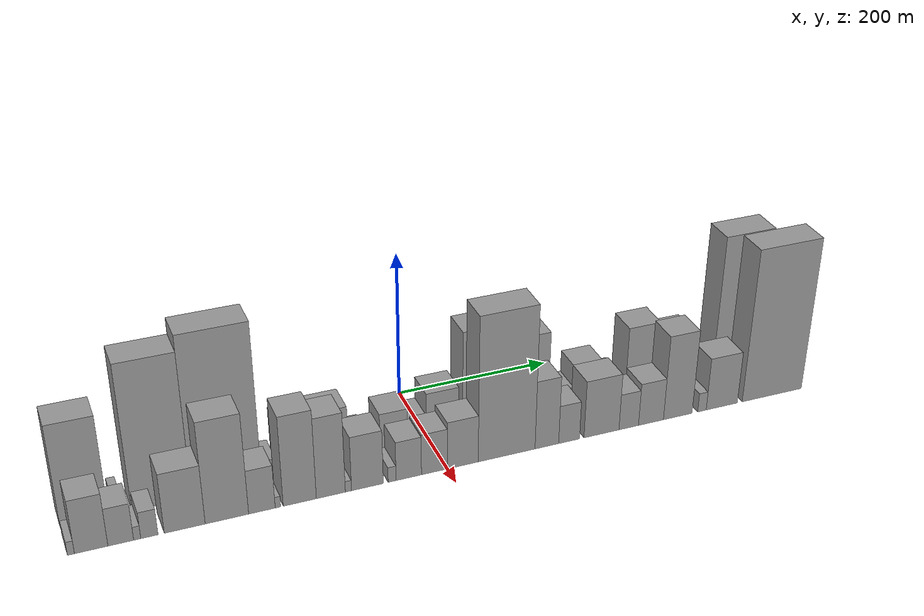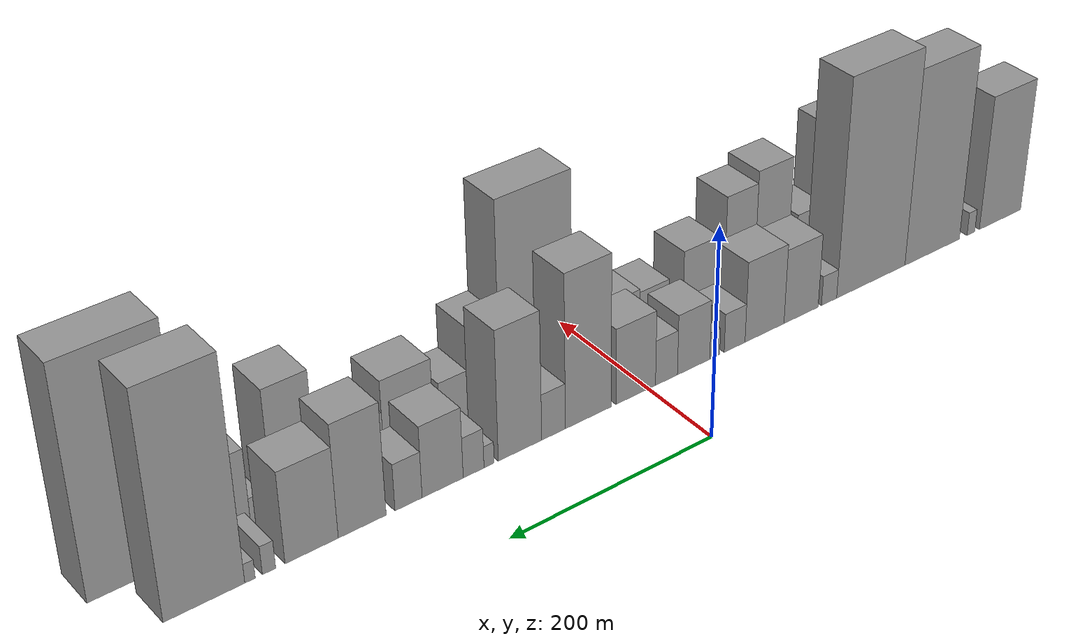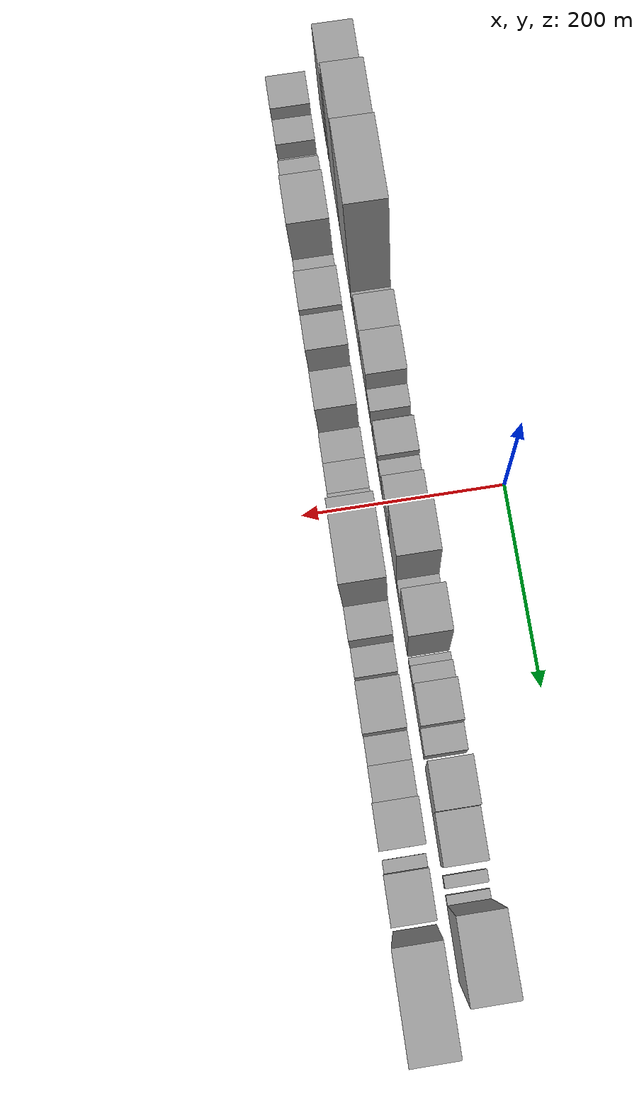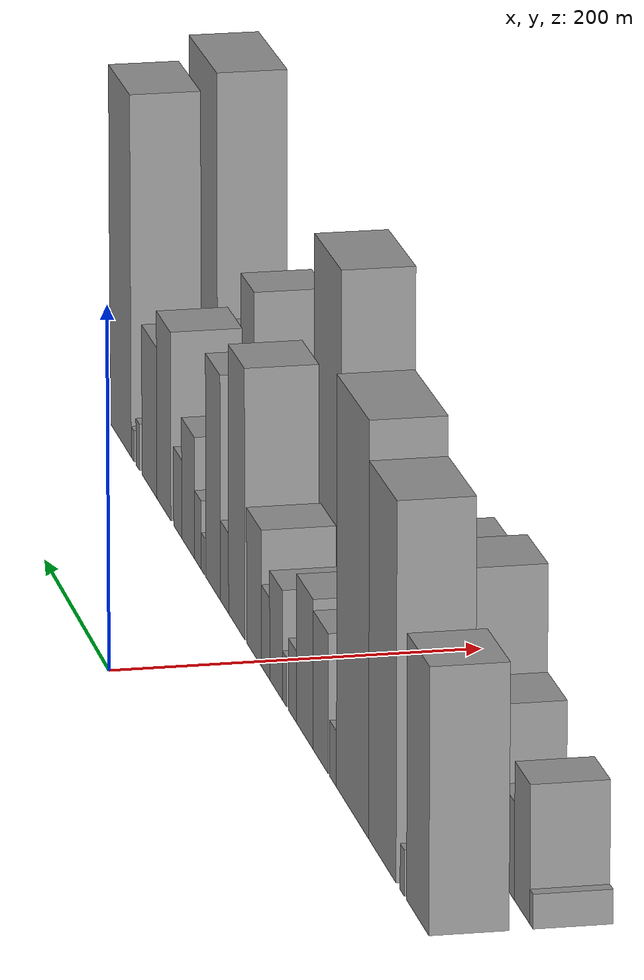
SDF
<sdf version="1.6">
 <world name="default">
  <scene>
   <sky><clouds><speed>12</speed></clouds></sky>
   <ambient>0.4 0.4 0.4 1</ambient>
   <background>0.7 0.7 0.7 1</background>
   <shadows>1</shadows>
  </scene>
  <gravity>0 0 -9.8066</gravity>
  <magnetic_field>6e-06 2.3e-05 -4.2e-05</magnetic_field>
  <physics default="0" name="default_physics" type="ode">
   <ode>
    <solver>
     <type>quick</type>
     <iters>10</iters>
     <sor>1.0</sor>
     <use_dynamic_moi_rescaling>0</use_dynamic_moi_rescaling>
    </solver>
    <constraints>
     <cfm>0</cfm>
     <erp>0.2</erp>
     <contact_max_correcting_vel>100</contact_max_correcting_vel>
     <contact_surface_layer>0.001</contact_surface_layer>
    </constraints>
   </ode>
   <max_step_size>0.004</max_step_size>
   <real_time_factor>1</real_time_factor>
   <real_time_update_rate>250</real_time_update_rate>
  </physics>
  <light name="sun" type="directional">
   <pose>0 0 10 0 0 0</pose>
   <diffuse>0.8 0.8 0.8 1</diffuse>
   <specular>0.2 0.2 0.2 1</specular>
   <attenuation>
    <range>1000</range>
    <constant>0.9</constant>
    <linear>0.01</linear>
    <quadratic>0.001</quadratic>
   </attenuation>
   <direction>-0.5 0.1 -0.9</direction>
  </light>
  <model name="building_1">
   <static>1</static>
   <pose>100.0000 -416.7734 0 0.000000 0.000000 0.000000</pose>
   <link name="link">
    <pose>0 0 69.00 0 0 0</pose>
    <collision name="collision"><geometry><box><size>40.0000 54.4531 138.0000</size></box></geometry></collision>
    <visual name="visual">
     <cast_shadows>0</cast_shadows>
     <geometry><box><size>40.0000 54.4531 138.0000</size></box></geometry>
     <material>
      <script>
       <uri>model://grey_wall/materials/scripts</uri>
       <uri>model://grey_wall/materials/textures</uri>
       <name>vrc/grey_wall</name>
      </script>
     </material>
    </visual>
   </link>
  </model>
  <model name="building_2">
   <static>1</static>
   <pose>100.0000 -378.5255 0 0.000000 0.000000 0.000000</pose>
   <link name="link">
    <pose>0 0 12.00 0 0 0</pose>
    <collision name="collision"><geometry><box><size>40.0000 10.0428 24.0000</size></box></geometry></collision>
    <visual name="visual">
     <cast_shadows>0</cast_shadows>
     <geometry><box><size>40.0000 10.0428 24.0000</size></box></geometry>
     <material>
      <script>
       <uri>model://grey_wall/materials/scripts</uri>
       <uri>model://grey_wall/materials/textures</uri>
       <name>vrc/grey_wall</name>
      </script>
     </material>
    </visual>
   </link>
  </model>
  <model name="building_3">
   <static>1</static>
   <pose>100.0000 -329.0137 0 0.000000 0.000000 0.000000</pose>
   <link name="link">
    <pose>0 0 99.00 0 0 0</pose>
    <collision name="collision"><geometry><box><size>40.0000 68.9809 198.0000</size></box></geometry></collision>
    <visual name="visual">
     <cast_shadows>0</cast_shadows>
     <geometry><box><size>40.0000 68.9809 198.0000</size></box></geometry>
     <material>
      <script>
       <uri>model://grey_wall/materials/scripts</uri>
       <uri>model://grey_wall/materials/textures</uri>
       <name>vrc/grey_wall</name>
      </script>
     </material>
    </visual>
   </link>
  </model>
  <model name="building_4">
   <static>1</static>
   <pose>100.0000 -252.9540 0 0.000000 0.000000 0.000000</pose>
   <link name="link">
    <pose>0 0 109.50 0 0 0</pose>
    <collision name="collision"><geometry><box><size>40.0000 83.1383 219.0000</size></box></geometry></collision>
    <visual name="visual">
     <cast_shadows>0</cast_shadows>
     <geometry><box><size>40.0000 83.1383 219.0000</size></box></geometry>
     <material>
      <script>
       <uri>model://grey_wall/materials/scripts</uri>
       <uri>model://grey_wall/materials/textures</uri>
       <name>vrc/grey_wall</name>
      </script>
     </material>
    </visual>
   </link>
  </model>
  <model name="building_5">
   <static>1</static>
   <pose>100.0000 -202.4110 0 0.000000 0.000000 0.000000</pose>
   <link name="link">
    <pose>0 0 15.00 0 0 0</pose>
    <collision name="collision"><geometry><box><size>40.0000 17.9478 30.0000</size></box></geometry></collision>
    <visual name="visual">
     <cast_shadows>0</cast_shadows>
     <geometry><box><size>40.0000 17.9478 30.0000</size></box></geometry>
     <material>
      <script>
       <uri>model://grey_wall/materials/scripts</uri>
       <uri>model://grey_wall/materials/textures</uri>
       <name>vrc/grey_wall</name>
      </script>
     </material>
    </visual>
   </link>
  </model>
  <model name="building_6">
   <static>1</static>
   <pose>100.0000 -169.5656 0 0.000000 0.000000 0.000000</pose>
   <link name="link">
    <pose>0 0 37.50 0 0 0</pose>
    <collision name="collision"><geometry><box><size>40.0000 39.7429 75.0000</size></box></geometry></collision>
    <visual name="visual">
     <cast_shadows>0</cast_shadows>
     <geometry><box><size>40.0000 39.7429 75.0000</size></box></geometry>
     <material>
      <script>
       <uri>model://grey_wall/materials/scripts</uri>
       <uri>model://grey_wall/materials/textures</uri>
       <name>vrc/grey_wall</name>
      </script>
     </material>
    </visual>
   </link>
  </model>
  <model name="building_7">
   <static>1</static>
   <pose>100.0000 -127.5140 0 0.000000 0.000000 0.000000</pose>
   <link name="link">
    <pose>0 0 40.50 0 0 0</pose>
    <collision name="collision"><geometry><box><size>40.0000 44.3604 81.0000</size></box></geometry></collision>
    <visual name="visual">
     <cast_shadows>0</cast_shadows>
     <geometry><box><size>40.0000 44.3604 81.0000</size></box></geometry>
     <material>
      <script>
       <uri>model://grey_wall/materials/scripts</uri>
       <uri>model://grey_wall/materials/textures</uri>
       <name>vrc/grey_wall</name>
      </script>
     </material>
    </visual>
   </link>
  </model>
  <model name="building_8">
   <static>1</static>
   <pose>100.0000 -93.7154 0 0.000000 0.000000 0.000000</pose>
   <link name="link">
    <pose>0 0 19.50 0 0 0</pose>
    <collision name="collision"><geometry><box><size>40.0000 23.2367 39.0000</size></box></geometry></collision>
    <visual name="visual">
     <cast_shadows>0</cast_shadows>
     <geometry><box><size>40.0000 23.2367 39.0000</size></box></geometry>
     <material>
      <script>
       <uri>model://grey_wall/materials/scripts</uri>
       <uri>model://grey_wall/materials/textures</uri>
       <name>vrc/grey_wall</name>
      </script>
     </material>
    </visual>
   </link>
  </model>
  <model name="building_9">
   <static>1</static>
   <pose>100.0000 -71.5816 0 0.000000 0.000000 0.000000</pose>
   <link name="link">
    <pose>0 0 13.50 0 0 0</pose>
    <collision name="collision"><geometry><box><size>40.0000 11.0311 27.0000</size></box></geometry></collision>
    <visual name="visual">
     <cast_shadows>0</cast_shadows>
     <geometry><box><size>40.0000 11.0311 27.0000</size></box></geometry>
     <material>
      <script>
       <uri>model://grey_wall/materials/scripts</uri>
       <uri>model://grey_wall/materials/textures</uri>
       <name>vrc/grey_wall</name>
      </script>
     </material>
    </visual>
   </link>
  </model>
  <model name="building_10">
   <static>1</static>
   <pose>100.0000 -48.4964 0 0.000000 0.000000 0.000000</pose>
   <link name="link">
    <pose>0 0 30.00 0 0 0</pose>
    <collision name="collision"><geometry><box><size>40.0000 35.1393 60.0000</size></box></geometry></collision>
    <visual name="visual">
     <cast_shadows>0</cast_shadows>
     <geometry><box><size>40.0000 35.1393 60.0000</size></box></geometry>
     <material>
      <script>
       <uri>model://grey_wall/materials/scripts</uri>
       <uri>model://grey_wall/materials/textures</uri>
       <name>vrc/grey_wall</name>
      </script>
     </material>
    </visual>
   </link>
  </model>
  <model name="building_11">
   <static>1</static>
   <pose>100.0000 -19.2095 0 0.000000 0.000000 0.000000</pose>
   <link name="link">
    <pose>0 0 22.50 0 0 0</pose>
    <collision name="collision"><geometry><box><size>40.0000 23.4344 45.0000</size></box></geometry></collision>
    <visual name="visual">
     <cast_shadows>0</cast_shadows>
     <geometry><box><size>40.0000 23.4344 45.0000</size></box></geometry>
     <material>
      <script>
       <uri>model://grey_wall/materials/scripts</uri>
       <uri>model://grey_wall/materials/textures</uri>
       <name>vrc/grey_wall</name>
      </script>
     </material>
    </visual>
   </link>
  </model>
  <model name="building_12">
   <static>1</static>
   <pose>100.0000 13.3130 0 0.000000 0.000000 0.000000</pose>
   <link name="link">
    <pose>0 0 37.50 0 0 0</pose>
    <collision name="collision"><geometry><box><size>40.0000 41.6106 75.0000</size></box></geometry></collision>
    <visual name="visual">
     <cast_shadows>0</cast_shadows>
     <geometry><box><size>40.0000 41.6106 75.0000</size></box></geometry>
     <material>
      <script>
       <uri>model://grey_wall/materials/scripts</uri>
       <uri>model://grey_wall/materials/textures</uri>
       <name>vrc/grey_wall</name>
      </script>
     </material>
    </visual>
   </link>
  </model>
  <model name="building_13">
   <static>1</static>
   <pose>100.0000 62.4537 0 0.000000 0.000000 0.000000</pose>
   <link name="link">
    <pose>0 0 75.00 0 0 0</pose>
    <collision name="collision"><geometry><box><size>40.0000 46.6707 150.0000</size></box></geometry></collision>
    <visual name="visual">
     <cast_shadows>0</cast_shadows>
     <geometry><box><size>40.0000 46.6707 150.0000</size></box></geometry>
     <material>
      <script>
       <uri>model://grey_wall/materials/scripts</uri>
       <uri>model://grey_wall/materials/textures</uri>
       <name>vrc/grey_wall</name>
      </script>
     </material>
    </visual>
   </link>
  </model>
  <model name="building_14">
   <static>1</static>
   <pose>100.0000 97.6336 0 0.000000 0.000000 0.000000</pose>
   <link name="link">
    <pose>0 0 22.50 0 0 0</pose>
    <collision name="collision"><geometry><box><size>40.0000 23.6893 45.0000</size></box></geometry></collision>
    <visual name="visual">
     <cast_shadows>0</cast_shadows>
     <geometry><box><size>40.0000 23.6893 45.0000</size></box></geometry>
     <material>
      <script>
       <uri>model://grey_wall/materials/scripts</uri>
       <uri>model://grey_wall/materials/textures</uri>
       <name>vrc/grey_wall</name>
      </script>
     </material>
    </visual>
   </link>
  </model>
  <model name="building_15">
   <static>1</static>
   <pose>100.0000 130.8241 0 0.000000 0.000000 0.000000</pose>
   <link name="link">
    <pose>0 0 63.00 0 0 0</pose>
    <collision name="collision"><geometry><box><size>40.0000 42.6915 126.0000</size></box></geometry></collision>
    <visual name="visual">
     <cast_shadows>0</cast_shadows>
     <geometry><box><size>40.0000 42.6915 126.0000</size></box></geometry>
     <material>
      <script>
       <uri>model://grey_wall/materials/scripts</uri>
       <uri>model://grey_wall/materials/textures</uri>
       <name>vrc/grey_wall</name>
      </script>
     </material>
    </visual>
   </link>
  </model>
  <model name="building_16">
   <static>1</static>
   <pose>100.0000 161.0582 0 0.000000 0.000000 0.000000</pose>
   <link name="link">
    <pose>0 0 10.50 0 0 0</pose>
    <collision name="collision"><geometry><box><size>40.0000 9.7767 21.0000</size></box></geometry></collision>
    <visual name="visual">
     <cast_shadows>0</cast_shadows>
     <geometry><box><size>40.0000 9.7767 21.0000</size></box></geometry>
     <material>
      <script>
       <uri>model://grey_wall/materials/scripts</uri>
       <uri>model://grey_wall/materials/textures</uri>
       <name>vrc/grey_wall</name>
      </script>
     </material>
    </visual>
   </link>
  </model>
  <model name="building_17">
   <static>1</static>
   <pose>100.0000 175.8784 0 0.000000 0.000000 0.000000</pose>
   <link name="link">
    <pose>0 0 19.50 0 0 0</pose>
    <collision name="collision"><geometry><box><size>40.0000 19.8638 39.0000</size></box></geometry></collision>
    <visual name="visual">
     <cast_shadows>0</cast_shadows>
     <geometry><box><size>40.0000 19.8638 39.0000</size></box></geometry>
     <material>
      <script>
       <uri>model://grey_wall/materials/scripts</uri>
       <uri>model://grey_wall/materials/textures</uri>
       <name>vrc/grey_wall</name>
      </script>
     </material>
    </visual>
   </link>
  </model>
  <model name="building_18">
   <static>1</static>
   <pose>100.0000 205.0954 0 0.000000 0.000000 0.000000</pose>
   <link name="link">
    <pose>0 0 34.50 0 0 0</pose>
    <collision name="collision"><geometry><box><size>40.0000 38.5702 69.0000</size></box></geometry></collision>
    <visual name="visual">
     <cast_shadows>0</cast_shadows>
     <geometry><box><size>40.0000 38.5702 69.0000</size></box></geometry>
     <material>
      <script>
       <uri>model://grey_wall/materials/scripts</uri>
       <uri>model://grey_wall/materials/textures</uri>
       <name>vrc/grey_wall</name>
      </script>
     </material>
    </visual>
   </link>
  </model>
  <model name="building_19">
   <static>1</static>
   <pose>100.0000 236.8937 0 0.000000 0.000000 0.000000</pose>
   <link name="link">
    <pose>0 0 22.50 0 0 0</pose>
    <collision name="collision"><geometry><box><size>40.0000 25.0264 45.0000</size></box></geometry></collision>
    <visual name="visual">
     <cast_shadows>0</cast_shadows>
     <geometry><box><size>40.0000 25.0264 45.0000</size></box></geometry>
     <material>
      <script>
       <uri>model://grey_wall/materials/scripts</uri>
       <uri>model://grey_wall/materials/textures</uri>
       <name>vrc/grey_wall</name>
      </script>
     </material>
    </visual>
   </link>
  </model>
  <model name="building_20">
   <static>1</static>
   <pose>100.0000 278.9162 0 0.000000 0.000000 0.000000</pose>
   <link name="link">
    <pose>0 0 54.00 0 0 0</pose>
    <collision name="collision"><geometry><box><size>40.0000 43.0185 108.0000</size></box></geometry></collision>
    <visual name="visual">
     <cast_shadows>0</cast_shadows>
     <geometry><box><size>40.0000 43.0185 108.0000</size></box></geometry>
     <material>
      <script>
       <uri>model://grey_wall/materials/scripts</uri>
       <uri>model://grey_wall/materials/textures</uri>
       <name>vrc/grey_wall</name>
      </script>
     </material>
    </visual>
   </link>
  </model>
  <model name="building_21">
   <static>1</static>
   <pose>100.0000 323.6745 0 0.000000 0.000000 0.000000</pose>
   <link name="link">
    <pose>0 0 43.50 0 0 0</pose>
    <collision name="collision"><geometry><box><size>40.0000 46.4981 87.0000</size></box></geometry></collision>
    <visual name="visual">
     <cast_shadows>0</cast_shadows>
     <geometry><box><size>40.0000 46.4981 87.0000</size></box></geometry>
     <material>
      <script>
       <uri>model://grey_wall/materials/scripts</uri>
       <uri>model://grey_wall/materials/textures</uri>
       <name>vrc/grey_wall</name>
      </script>
     </material>
    </visual>
   </link>
  </model>
  <model name="building_22">
   <static>1</static>
   <pose>100.0000 360.6022 0 0.000000 0.000000 0.000000</pose>
   <link name="link">
    <pose>0 0 13.50 0 0 0</pose>
    <collision name="collision"><geometry><box><size>40.0000 11.3573 27.0000</size></box></geometry></collision>
    <visual name="visual">
     <cast_shadows>0</cast_shadows>
     <geometry><box><size>40.0000 11.3573 27.0000</size></box></geometry>
     <material>
      <script>
       <uri>model://grey_wall/materials/scripts</uri>
       <uri>model://grey_wall/materials/textures</uri>
       <name>vrc/grey_wall</name>
      </script>
     </material>
    </visual>
   </link>
  </model>
  <model name="building_23">
   <static>1</static>
   <pose>100.0000 376.6879 0 0.000000 0.000000 0.000000</pose>
   <link name="link">
    <pose>0 0 9.00 0 0 0</pose>
    <collision name="collision"><geometry><box><size>40.0000 8.8140 18.0000</size></box></geometry></collision>
    <visual name="visual">
     <cast_shadows>0</cast_shadows>
     <geometry><box><size>40.0000 8.8140 18.0000</size></box></geometry>
     <material>
      <script>
       <uri>model://grey_wall/materials/scripts</uri>
       <uri>model://grey_wall/materials/textures</uri>
       <name>vrc/grey_wall</name>
      </script>
     </material>
    </visual>
   </link>
  </model>
  <model name="building_24">
   <static>1</static>
   <pose>100.0000 414.8441 0 0.000000 0.000000 0.000000</pose>
   <link name="link">
    <pose>0 0 105.00 0 0 0</pose>
    <collision name="collision"><geometry><box><size>40.0000 67.4983 210.0000</size></box></geometry></collision>
    <visual name="visual">
     <cast_shadows>0</cast_shadows>
     <geometry><box><size>40.0000 67.4983 210.0000</size></box></geometry>
     <material>
      <script>
       <uri>model://grey_wall/materials/scripts</uri>
       <uri>model://grey_wall/materials/textures</uri>
       <name>vrc/grey_wall</name>
      </script>
     </material>
    </visual>
   </link>
  </model>
  <model name="building_25">
   <static>1</static>
   <pose>152.0000 -440.1684 0 0.000000 0.000000 0.000000</pose>
   <link name="link">
    <pose>0 0 9.00 0 0 0</pose>
    <collision name="collision"><geometry><box><size>40.0000 7.6632 18.0000</size></box></geometry></collision>
    <visual name="visual">
     <cast_shadows>0</cast_shadows>
     <geometry><box><size>40.0000 7.6632 18.0000</size></box></geometry>
     <material>
      <script>
       <uri>model://grey_wall/materials/scripts</uri>
       <uri>model://grey_wall/materials/textures</uri>
       <name>vrc/grey_wall</name>
      </script>
     </material>
    </visual>
   </link>
  </model>
  <model name="building_26">
   <static>1</static>
   <pose>152.0000 -418.0549 0 0.000000 0.000000 0.000000</pose>
   <link name="link">
    <pose>0 0 36.00 0 0 0</pose>
    <collision name="collision"><geometry><box><size>40.0000 36.5638 72.0000</size></box></geometry></collision>
    <visual name="visual">
     <cast_shadows>0</cast_shadows>
     <geometry><box><size>40.0000 36.5638 72.0000</size></box></geometry>
     <material>
      <script>
       <uri>model://grey_wall/materials/scripts</uri>
       <uri>model://grey_wall/materials/textures</uri>
       <name>vrc/grey_wall</name>
      </script>
     </material>
    </visual>
   </link>
  </model>
  <model name="building_27">
   <static>1</static>
   <pose>152.0000 -385.5785 0 0.000000 0.000000 0.000000</pose>
   <link name="link">
    <pose>0 0 25.50 0 0 0</pose>
    <collision name="collision"><geometry><box><size>40.0000 28.3890 51.0000</size></box></geometry></collision>
    <visual name="visual">
     <cast_shadows>0</cast_shadows>
     <geometry><box><size>40.0000 28.3890 51.0000</size></box></geometry>
     <material>
      <script>
       <uri>model://grey_wall/materials/scripts</uri>
       <uri>model://grey_wall/materials/textures</uri>
       <name>vrc/grey_wall</name>
      </script>
     </material>
    </visual>
   </link>
  </model>
  <model name="building_28">
   <static>1</static>
   <pose>152.0000 -367.4408 0 0.000000 0.000000 0.000000</pose>
   <link name="link">
    <pose>0 0 9.00 0 0 0</pose>
    <collision name="collision"><geometry><box><size>40.0000 7.8864 18.0000</size></box></geometry></collision>
    <visual name="visual">
     <cast_shadows>0</cast_shadows>
     <geometry><box><size>40.0000 7.8864 18.0000</size></box></geometry>
     <material>
      <script>
       <uri>model://grey_wall/materials/scripts</uri>
       <uri>model://grey_wall/materials/textures</uri>
       <name>vrc/grey_wall</name>
      </script>
     </material>
    </visual>
   </link>
  </model>
  <model name="building_29">
   <static>1</static>
   <pose>152.0000 -353.8533 0 0.000000 0.000000 0.000000</pose>
   <link name="link">
    <pose>0 0 18.00 0 0 0</pose>
    <collision name="collision"><geometry><box><size>40.0000 19.2886 36.0000</size></box></geometry></collision>
    <visual name="visual">
     <cast_shadows>0</cast_shadows>
     <geometry><box><size>40.0000 19.2886 36.0000</size></box></geometry>
     <material>
      <script>
       <uri>model://grey_wall/materials/scripts</uri>
       <uri>model://grey_wall/materials/textures</uri>
       <name>vrc/grey_wall</name>
      </script>
     </material>
    </visual>
   </link>
  </model>
  <model name="building_30">
   <static>1</static>
   <pose>152.0000 -314.0404 0 0.000000 0.000000 0.000000</pose>
   <link name="link">
    <pose>0 0 40.50 0 0 0</pose>
    <collision name="collision"><geometry><box><size>40.0000 46.3372 81.0000</size></box></geometry></collision>
    <visual name="visual">
     <cast_shadows>0</cast_shadows>
     <geometry><box><size>40.0000 46.3372 81.0000</size></box></geometry>
     <material>
      <script>
       <uri>model://grey_wall/materials/scripts</uri>
       <uri>model://grey_wall/materials/textures</uri>
       <name>vrc/grey_wall</name>
      </script>
     </material>
    </visual>
   </link>
  </model>
  <model name="building_31">
   <static>1</static>
   <pose>152.0000 -265.8403 0 0.000000 0.000000 0.000000</pose>
   <link name="link">
    <pose>0 0 69.00 0 0 0</pose>
    <collision name="collision"><geometry><box><size>40.0000 50.0629 138.0000</size></box></geometry></collision>
    <visual name="visual">
     <cast_shadows>0</cast_shadows>
     <geometry><box><size>40.0000 50.0629 138.0000</size></box></geometry>
     <material>
      <script>
       <uri>model://grey_wall/materials/scripts</uri>
       <uri>model://grey_wall/materials/textures</uri>
       <name>vrc/grey_wall</name>
      </script>
     </material>
    </visual>
   </link>
  </model>
  <model name="building_32">
   <static>1</static>
   <pose>152.0000 -225.3065 0 0.000000 0.000000 0.000000</pose>
   <link name="link">
    <pose>0 0 30.00 0 0 0</pose>
    <collision name="collision"><geometry><box><size>40.0000 31.0048 60.0000</size></box></geometry></collision>
    <visual name="visual">
     <cast_shadows>0</cast_shadows>
     <geometry><box><size>40.0000 31.0048 60.0000</size></box></geometry>
     <material>
      <script>
       <uri>model://grey_wall/materials/scripts</uri>
       <uri>model://grey_wall/materials/textures</uri>
       <name>vrc/grey_wall</name>
      </script>
     </material>
    </visual>
   </link>
  </model>
  <model name="building_33">
   <static>1</static>
   <pose>152.0000 -206.5913 0 0.000000 0.000000 0.000000</pose>
   <link name="link">
    <pose>0 0 7.50 0 0 0</pose>
    <collision name="collision"><geometry><box><size>40.0000 6.4255 15.0000</size></box></geometry></collision>
    <visual name="visual">
     <cast_shadows>0</cast_shadows>
     <geometry><box><size>40.0000 6.4255 15.0000</size></box></geometry>
     <material>
      <script>
       <uri>model://grey_wall/materials/scripts</uri>
       <uri>model://grey_wall/materials/textures</uri>
       <name>vrc/grey_wall</name>
      </script>
     </material>
    </visual>
   </link>
  </model>
  <model name="building_34">
   <static>1</static>
   <pose>152.0000 -180.7314 0 0.000000 0.000000 0.000000</pose>
   <link name="link">
    <pose>0 0 61.50 0 0 0</pose>
    <collision name="collision"><geometry><box><size>40.0000 39.2943 123.0000</size></box></geometry></collision>
    <visual name="visual">
     <cast_shadows>0</cast_shadows>
     <geometry><box><size>40.0000 39.2943 123.0000</size></box></geometry>
     <material>
      <script>
       <uri>model://grey_wall/materials/scripts</uri>
       <uri>model://grey_wall/materials/textures</uri>
       <name>vrc/grey_wall</name>
      </script>
     </material>
    </visual>
   </link>
  </model>
  <model name="building_35">
   <static>1</static>
   <pose>152.0000 -143.6471 0 0.000000 0.000000 0.000000</pose>
   <link name="link">
    <pose>0 0 55.50 0 0 0</pose>
    <collision name="collision"><geometry><box><size>40.0000 34.8742 111.0000</size></box></geometry></collision>
    <visual name="visual">
     <cast_shadows>0</cast_shadows>
     <geometry><box><size>40.0000 34.8742 111.0000</size></box></geometry>
     <material>
      <script>
       <uri>model://grey_wall/materials/scripts</uri>
       <uri>model://grey_wall/materials/textures</uri>
       <name>vrc/grey_wall</name>
      </script>
     </material>
    </visual>
   </link>
  </model>
  <model name="building_36">
   <static>1</static>
   <pose>152.0000 -122.4761 0 0.000000 0.000000 0.000000</pose>
   <link name="link">
    <pose>0 0 7.50 0 0 0</pose>
    <collision name="collision"><geometry><box><size>40.0000 7.4679 15.0000</size></box></geometry></collision>
    <visual name="visual">
     <cast_shadows>0</cast_shadows>
     <geometry><box><size>40.0000 7.4679 15.0000</size></box></geometry>
     <material>
      <script>
       <uri>model://grey_wall/materials/scripts</uri>
       <uri>model://grey_wall/materials/textures</uri>
       <name>vrc/grey_wall</name>
      </script>
     </material>
    </visual>
   </link>
  </model>
  <model name="building_37">
   <static>1</static>
   <pose>152.0000 -99.4048 0 0.000000 0.000000 0.000000</pose>
   <link name="link">
    <pose>0 0 37.50 0 0 0</pose>
    <collision name="collision"><geometry><box><size>40.0000 38.6746 75.0000</size></box></geometry></collision>
    <visual name="visual">
     <cast_shadows>0</cast_shadows>
     <geometry><box><size>40.0000 38.6746 75.0000</size></box></geometry>
     <material>
      <script>
       <uri>model://grey_wall/materials/scripts</uri>
       <uri>model://grey_wall/materials/textures</uri>
       <name>vrc/grey_wall</name>
      </script>
     </material>
    </visual>
   </link>
  </model>
  <model name="building_38">
   <static>1</static>
   <pose>152.0000 -69.1788 0 0.000000 0.000000 0.000000</pose>
   <link name="link">
    <pose>0 0 10.50 0 0 0</pose>
    <collision name="collision"><geometry><box><size>40.0000 9.7775 21.0000</size></box></geometry></collision>
    <visual name="visual">
     <cast_shadows>0</cast_shadows>
     <geometry><box><size>40.0000 9.7775 21.0000</size></box></geometry>
     <material>
      <script>
       <uri>model://grey_wall/materials/scripts</uri>
       <uri>model://grey_wall/materials/textures</uri>
       <name>vrc/grey_wall</name>
      </script>
     </material>
    </visual>
   </link>
  </model>
  <model name="building_39">
   <static>1</static>
   <pose>152.0000 -48.5217 0 0.000000 0.000000 0.000000</pose>
   <link name="link">
    <pose>0 0 27.00 0 0 0</pose>
    <collision name="collision"><geometry><box><size>40.0000 31.5368 54.0000</size></box></geometry></collision>
    <visual name="visual">
     <cast_shadows>0</cast_shadows>
     <geometry><box><size>40.0000 31.5368 54.0000</size></box></geometry>
     <material>
      <script>
       <uri>model://grey_wall/materials/scripts</uri>
       <uri>model://grey_wall/materials/textures</uri>
       <name>vrc/grey_wall</name>
      </script>
     </material>
    </visual>
   </link>
  </model>
  <model name="building_40">
   <static>1</static>
   <pose>152.0000 -16.5836 0 0.000000 0.000000 0.000000</pose>
   <link name="link">
    <pose>0 0 28.50 0 0 0</pose>
    <collision name="collision"><geometry><box><size>40.0000 32.3393 57.0000</size></box></geometry></collision>
    <visual name="visual">
     <cast_shadows>0</cast_shadows>
     <geometry><box><size>40.0000 32.3393 57.0000</size></box></geometry>
     <material>
      <script>
       <uri>model://grey_wall/materials/scripts</uri>
       <uri>model://grey_wall/materials/textures</uri>
       <name>vrc/grey_wall</name>
      </script>
     </material>
    </visual>
   </link>
  </model>
  <model name="building_41">
   <static>1</static>
   <pose>152.0000 19.2297 0 0.000000 0.000000 0.000000</pose>
   <link name="link">
    <pose>0 0 33.00 0 0 0</pose>
    <collision name="collision"><geometry><box><size>40.0000 39.2873 66.0000</size></box></geometry></collision>
    <visual name="visual">
     <cast_shadows>0</cast_shadows>
     <geometry><box><size>40.0000 39.2873 66.0000</size></box></geometry>
     <material>
      <script>
       <uri>model://grey_wall/materials/scripts</uri>
       <uri>model://grey_wall/materials/textures</uri>
       <name>vrc/grey_wall</name>
      </script>
     </material>
    </visual>
   </link>
  </model>
  <model name="building_42">
   <static>1</static>
   <pose>152.0000 75.6156 0 0.000000 0.000000 0.000000</pose>
   <link name="link">
    <pose>0 0 100.50 0 0 0</pose>
    <collision name="collision"><geometry><box><size>40.0000 73.4847 201.0000</size></box></geometry></collision>
    <visual name="visual">
     <cast_shadows>0</cast_shadows>
     <geometry><box><size>40.0000 73.4847 201.0000</size></box></geometry>
     <material>
      <script>
       <uri>model://grey_wall/materials/scripts</uri>
       <uri>model://grey_wall/materials/textures</uri>
       <name>vrc/grey_wall</name>
      </script>
     </material>
    </visual>
   </link>
  </model>
  <model name="building_43">
   <static>1</static>
   <pose>152.0000 127.8887 0 0.000000 0.000000 0.000000</pose>
   <link name="link">
    <pose>0 0 48.00 0 0 0</pose>
    <collision name="collision"><geometry><box><size>40.0000 31.0615 96.0000</size></box></geometry></collision>
    <visual name="visual">
     <cast_shadows>0</cast_shadows>
     <geometry><box><size>40.0000 31.0615 96.0000</size></box></geometry>
     <material>
      <script>
       <uri>model://grey_wall/materials/scripts</uri>
       <uri>model://grey_wall/materials/textures</uri>
       <name>vrc/grey_wall</name>
      </script>
     </material>
    </visual>
   </link>
  </model>
  <model name="building_44">
   <static>1</static>
   <pose>152.0000 157.2823 0 0.000000 0.000000 0.000000</pose>
   <link name="link">
    <pose>0 0 27.00 0 0 0</pose>
    <collision name="collision"><geometry><box><size>40.0000 27.7257 54.0000</size></box></geometry></collision>
    <visual name="visual">
     <cast_shadows>0</cast_shadows>
     <geometry><box><size>40.0000 27.7257 54.0000</size></box></geometry>
     <material>
      <script>
       <uri>model://grey_wall/materials/scripts</uri>
       <uri>model://grey_wall/materials/textures</uri>
       <name>vrc/grey_wall</name>
      </script>
     </material>
    </visual>
   </link>
  </model>
  <model name="building_45">
   <static>1</static>
   <pose>152.0000 200.7115 0 0.000000 0.000000 0.000000</pose>
   <link name="link">
    <pose>0 0 40.50 0 0 0</pose>
    <collision name="collision"><geometry><box><size>40.0000 47.1327 81.0000</size></box></geometry></collision>
    <visual name="visual">
     <cast_shadows>0</cast_shadows>
     <geometry><box><size>40.0000 47.1327 81.0000</size></box></geometry>
     <material>
      <script>
       <uri>model://grey_wall/materials/scripts</uri>
       <uri>model://grey_wall/materials/textures</uri>
       <name>vrc/grey_wall</name>
      </script>
     </material>
    </visual>
   </link>
  </model>
  <model name="building_46">
   <static>1</static>
   <pose>152.0000 237.6085 0 0.000000 0.000000 0.000000</pose>
   <link name="link">
    <pose>0 0 25.50 0 0 0</pose>
    <collision name="collision"><geometry><box><size>40.0000 26.6612 51.0000</size></box></geometry></collision>
    <visual name="visual">
     <cast_shadows>0</cast_shadows>
     <geometry><box><size>40.0000 26.6612 51.0000</size></box></geometry>
     <material>
      <script>
       <uri>model://grey_wall/materials/scripts</uri>
       <uri>model://grey_wall/materials/textures</uri>
       <name>vrc/grey_wall</name>
      </script>
     </material>
    </visual>
   </link>
  </model>
  <model name="building_47">
   <static>1</static>
   <pose>152.0000 268.1093 0 0.000000 0.000000 0.000000</pose>
   <link name="link">
    <pose>0 0 30.00 0 0 0</pose>
    <collision name="collision"><geometry><box><size>40.0000 34.3404 60.0000</size></box></geometry></collision>
    <visual name="visual">
     <cast_shadows>0</cast_shadows>
     <geometry><box><size>40.0000 34.3404 60.0000</size></box></geometry>
     <material>
      <script>
       <uri>model://grey_wall/materials/scripts</uri>
       <uri>model://grey_wall/materials/textures</uri>
       <name>vrc/grey_wall</name>
      </script>
     </material>
    </visual>
   </link>
  </model>
  <model name="building_48">
   <static>1</static>
   <pose>152.0000 305.2103 0 0.000000 0.000000 0.000000</pose>
   <link name="link">
    <pose>0 0 60.00 0 0 0</pose>
    <collision name="collision"><geometry><box><size>40.0000 39.8617 120.0000</size></box></geometry></collision>
    <visual name="visual">
     <cast_shadows>0</cast_shadows>
     <geometry><box><size>40.0000 39.8617 120.0000</size></box></geometry>
     <material>
      <script>
       <uri>model://grey_wall/materials/scripts</uri>
       <uri>model://grey_wall/materials/textures</uri>
       <name>vrc/grey_wall</name>
      </script>
     </material>
    </visual>
   </link>
  </model>
  <model name="building_49">
   <static>1</static>
   <pose>152.0000 339.0952 0 0.000000 0.000000 0.000000</pose>
   <link name="link">
    <pose>0 0 13.50 0 0 0</pose>
    <collision name="collision"><geometry><box><size>40.0000 11.9082 27.0000</size></box></geometry></collision>
    <visual name="visual">
     <cast_shadows>0</cast_shadows>
     <geometry><box><size>40.0000 11.9082 27.0000</size></box></geometry>
     <material>
      <script>
       <uri>model://grey_wall/materials/scripts</uri>
       <uri>model://grey_wall/materials/textures</uri>
       <name>vrc/grey_wall</name>
      </script>
     </material>
    </visual>
   </link>
  </model>
  <model name="building_50">
   <static>1</static>
   <pose>152.0000 367.1464 0 0.000000 0.000000 0.000000</pose>
   <link name="link">
    <pose>0 0 37.50 0 0 0</pose>
    <collision name="collision"><geometry><box><size>40.0000 44.1941 75.0000</size></box></geometry></collision>
    <visual name="visual">
     <cast_shadows>0</cast_shadows>
     <geometry><box><size>40.0000 44.1941 75.0000</size></box></geometry>
     <material>
      <script>
       <uri>model://grey_wall/materials/scripts</uri>
       <uri>model://grey_wall/materials/textures</uri>
       <name>vrc/grey_wall</name>
      </script>
     </material>
    </visual>
   </link>
  </model>
  <model name="building_51">
   <static>1</static>
   <pose>152.0000 439.1434 0 0.000000 0.000000 0.000000</pose>
   <link name="link">
    <pose>0 0 108.00 0 0 0</pose>
    <collision name="collision"><geometry><box><size>40.0000 85.7999 216.0000</size></box></geometry></collision>
    <visual name="visual">
     <cast_shadows>0</cast_shadows>
     <geometry><box><size>40.0000 85.7999 216.0000</size></box></geometry>
     <material>
      <script>
       <uri>model://grey_wall/materials/scripts</uri>
       <uri>model://grey_wall/materials/textures</uri>
       <name>vrc/grey_wall</name>
      </script>
     </material>
    </visual>
   </link>
  </model>
 </world>
</sdf>
